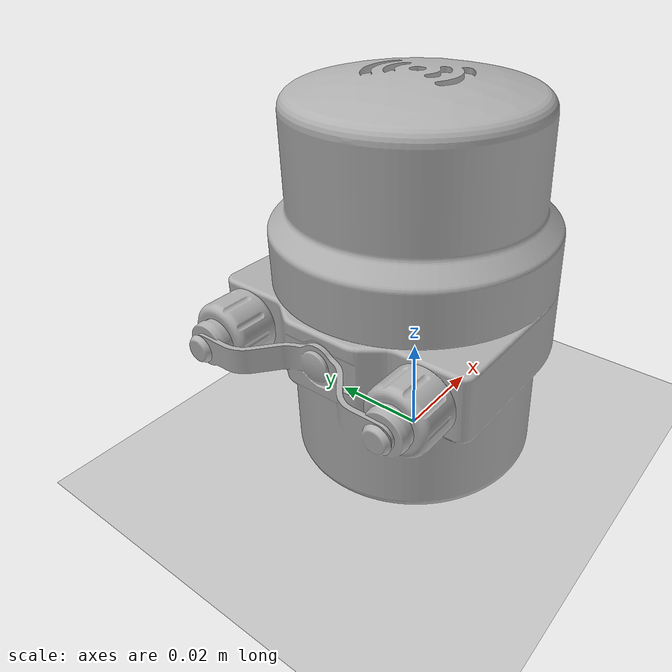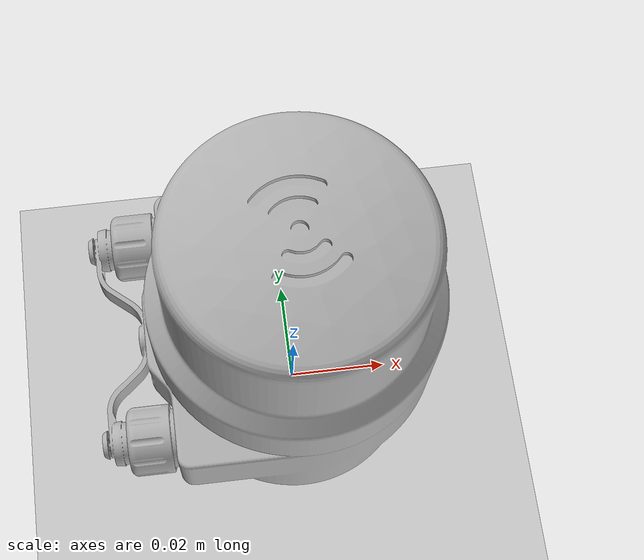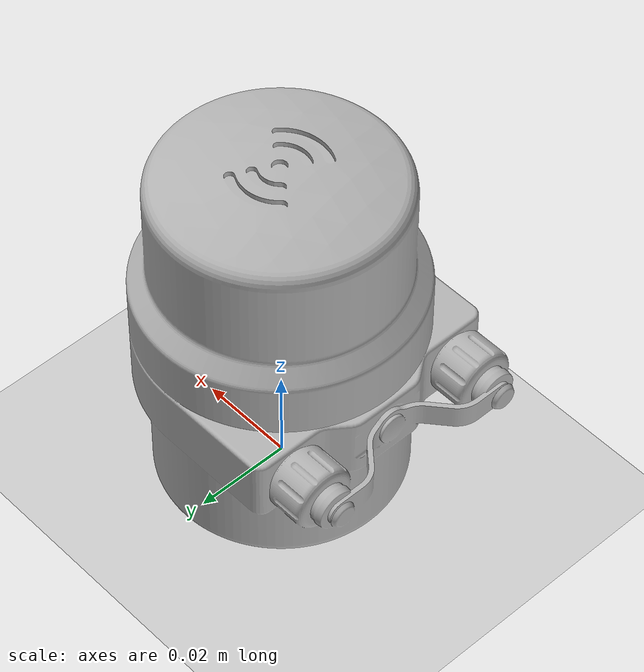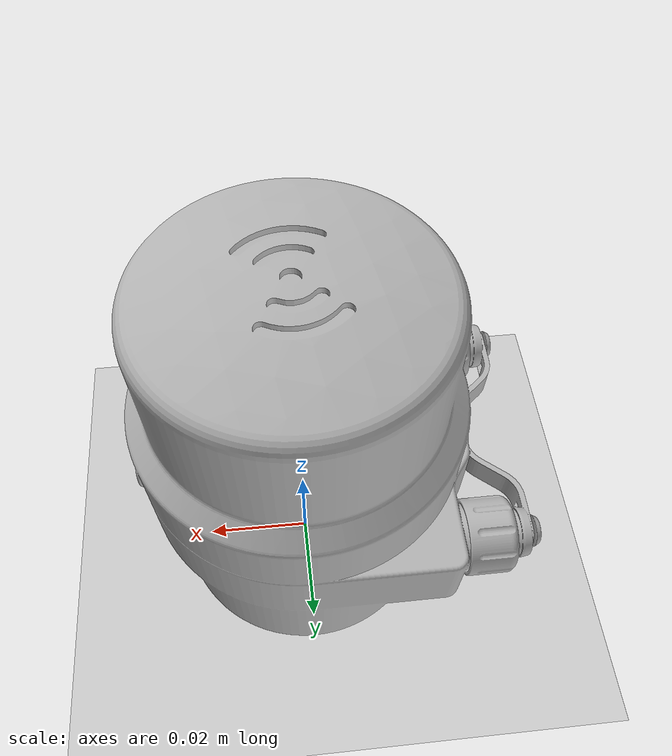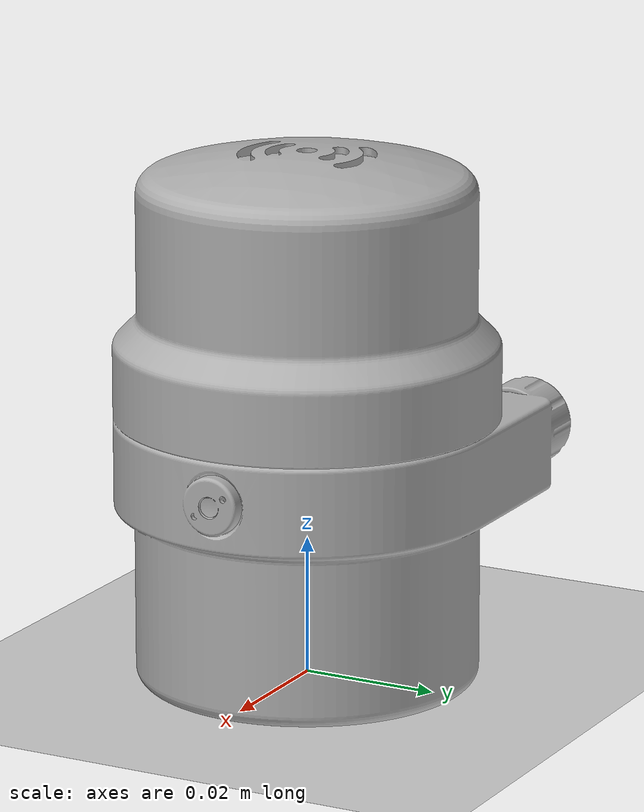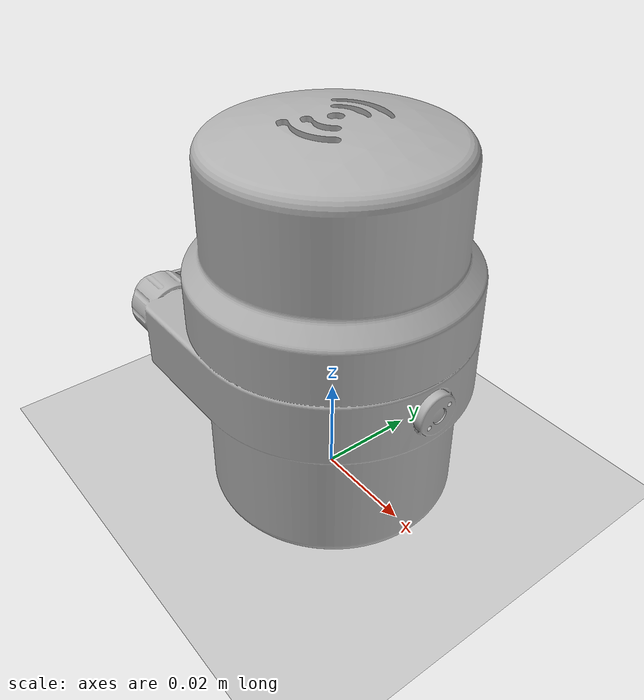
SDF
<?xml version="1.0" ?>
<sdf version="1.5">
  <world name="default">
    <!-- A global light source -->
    <include>
      <uri>model://sun</uri>
    </include>
    <!-- A ground plane -->
    <include>
      <uri>model://ground_plane</uri>
    </include>

    <!-- A testing model that includes the Micron sonar sensor model -->
    <model name="my_micron_sonar">
      <include>
        <uri>model://micron_sonar</uri>
      </include>

      <!-- Attach the plugin to this model -->
      <plugin name="micron_sonar_control" filename="./libmicron_sonar_plugin.so">
         <velocity>3</velocity>
      </plugin>

    </model>

  </world>
</sdf>

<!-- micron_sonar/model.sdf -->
<sdf version="1.5">

<model name="micron_sonar">
  <!-- Give the base link a unique name -->

  <link name="base">
    <!-- Offset the base by half the lenght of the cylinder -->
    <pose>0 0 0.029500 0 0 0</pose>
    <inertial>
      <mass>1.2</mass>
      <inertia>
        <ixx>0.001087473</ixx>
        <iyy>0.001087473</iyy>
        <izz>0.001092437</izz>
        <ixy>0</ixy>
        <ixz>0</ixz>
        <iyz>0</iyz>
      </inertia>
    </inertial>

    <collision name="base_collision">
      <geometry>
        <cylinder>
          <!-- Radius and length provided by Velodyne -->
          <radius>.02800</radius>
          <length>.05900</length>
        </cylinder>
      </geometry>
    </collision>

    <!-- The visual is mostly a copy of the collision -->
    <visual name="base_visual">
    <pose>0 0 -0.0300000 0 0 0</pose>
    <geometry>

          <!-- Radius and length provided by Velodyne -->

     <mesh>
       <!-- The URI should refer to the 3D mesh. The "model:"
           URI scheme indicates that the we are referencing a Gazebo
           model. -->
       <uri>model://micron_sonar/meshes/micron_sonar.dae</uri>
     </mesh>

    </geometry>
    </visual>
  </link>

  <!-- Give the base link a unique name -->
  <link name="top">
    <!-- Vertically offset the top cylinder by the length of the bottom
        cylinder and half the length of this cylinder. -->
    <pose>0 0 0.064500 0 0 0</pose>
       <inertial>
     <mass>0.1</mass>
     <inertia>
       <ixx>0.000090623</ixx>
       <iyy>0.000090623</iyy>
       <izz>0.000091036</izz>
       <ixy>0</ixy>
       <ixz>0</ixz>
       <iyz>0</iyz>
     </inertia>
   </inertial>
    <collision name="top_collision">
      <geometry>
        <cylinder>
          <!-- Radius and length provided by Velodyne -->
          <radius>.01000</radius>
          <length>.01000</length>
        </cylinder>
      </geometry>
    </collision>

    <!-- The visual is mostly a copy of the collision -->
    <visual name="top_visual">
      <geometry>

        <cylinder>
          <!-- Radius and length provided by Velodyne -->
          <radius>.01000</radius>
          <length>.01000</length>
        </cylinder>

       <!-- The URI should refer to the 3D mesh. The "model:"
           URI scheme indicates that the we are referencing a Gazebo
           model. -->
      </geometry>
    </visual>

<!-- Add a ray sensor, and give it a name -->
<sensor type="ray" name="sensor">

  <pose>0 0 -0.004645 1.5707 0 0</pose>

  <!-- Enable visualization to see the rays in the GUI -->
  <visualize>true</visualize>

  <!-- Set the update rate of the sensor -->
  <update_rate>30</update_rate>

<ray>

  <!-- The scan element contains the horizontal and vertical beams.
       We are leaving out the vertical beams for this tutorial. -->
  <scan>

    <!-- The horizontal beams -->
    <horizontal>
      <!-- The velodyne has 32 beams(samples) -->
      <samples>32</samples>

      <resolution>1</resolution>

      <!-- Minimum angle in radians -->
      <min_angle>-0.30540000</min_angle>

      <!-- Maximum angle in radians -->
      <max_angle>0.30540000</max_angle>
    </horizontal>

    <vertical>
      <!-- The velodyne has 32 beams(samples) -->
      <samples>5</samples>

      <!-- Resolution is multiplied by samples to determine number of
	   simulated beams vs interpolated beams. See:
	   http://sdformat.org/spec?ver=1.6&elem=sensor#horizontal_resolution
	   -->
      <resolution>1</resolution>

      <!-- Minimum angle in radians -->
      <min_angle>-0.04360000</min_angle>

      <!-- Maximum angle in radians -->
      <max_angle>0.04360000</max_angle>
    </vertical>

  </scan>

  <!-- Range defines characteristics of an individual beam -->
  <range>

    <!-- Minimum distance of the beam -->
    <min>0.05</min>

    <!-- Maximum distance of the beam -->
    <max>5</max>

    <!-- Linear resolution of the beam -->
    <resolution>0.02</resolution>
  </range>
</ray>

</sensor>

  </link>

<!-- Each joint must have a unique name -->
<joint type="revolute" name="joint">

  <!-- Position the joint at the bottom of the top link -->
  <pose>0 0 0.110000 0 0 0</pose>

  <!-- Use the base link as the parent of the joint -->
  <parent>base</parent>

  <!-- Use the top link as the child of the joint -->
  <child>top</child>

  <!-- The axis defines the joint's degree of freedom -->
  <axis>

    <!-- Revolve around the z-axis -->
    <xyz>0 0 1</xyz>

    <!-- Limit refers to the range of motion of the joint -->
    <limit>

      <!-- Use a very large number to indicate a continuous revolution -->
      <lower>-10000000000000000</lower>
      <upper>10000000000000000</upper>
    </limit>
  </axis>
</joint>

</model>

</sdf>
